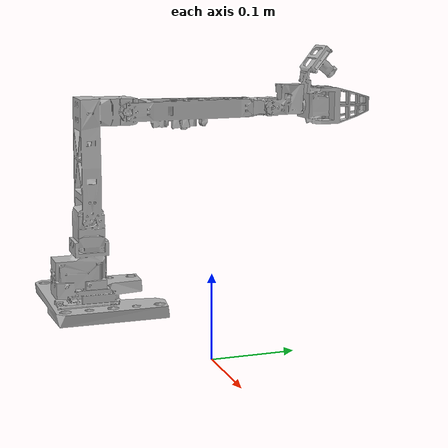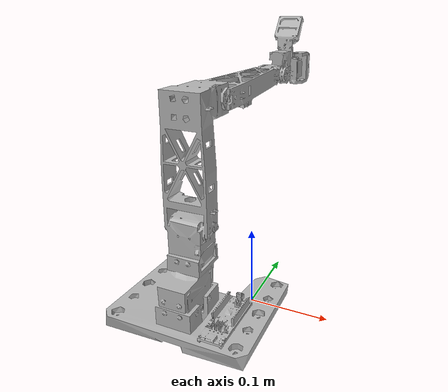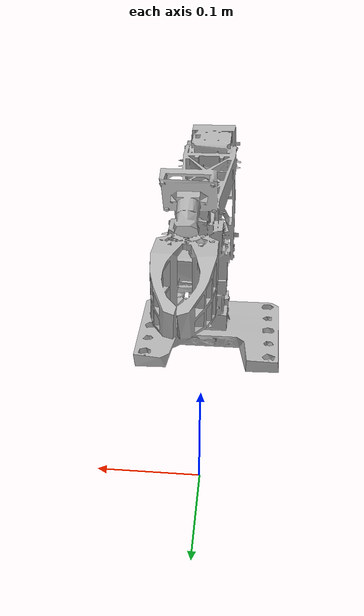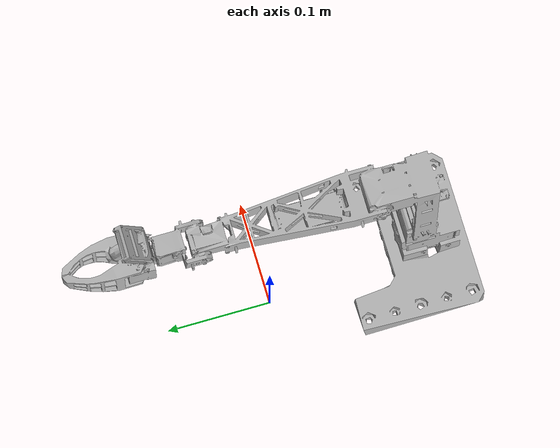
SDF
<?xml version="1.0"?>
<sdf version="1.10">
  <model name="omx_module">
    <static>true</static>
    <link name="base_link">
      <inertial>
        <pose>0.000000 0.075000 0.214000 0 0 0</pose>
        <mass>1.5000</mass>
        <inertia>
          <ixx>0.02716925</ixx><ixy>0</ixy><ixz>0</ixz>
          <iyy>0.01240363</iyy><iyz>0</iyz>
          <izz>0.02039062</izz>
        </inertia>
      </inertial>
      <collision name="collision">
        <pose>0.000000 0.075000 0.214000 0 0 0</pose>
        <geometry>
          <box><size>0.150000 0.375000 0.277000</size></box>
        </geometry>
        <surface>
          <friction><ode><mu>0.9</mu><mu2>0.9</mu2></ode></friction>
        </surface>
      </collision>
      <visual name="visual">
        <geometry>
          <mesh><uri>model://omx_module/meshes/omx_module.obj</uri></mesh>
        </geometry>
      </visual>
    </link>
  </model>
</sdf>
